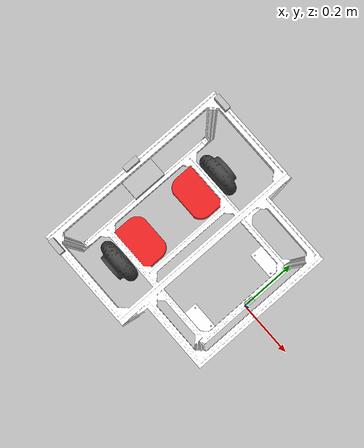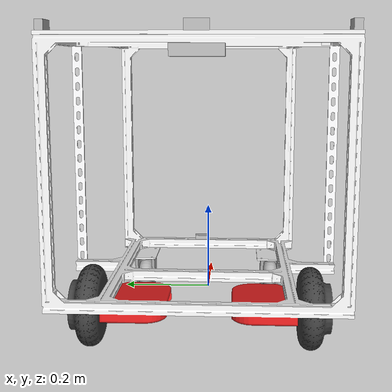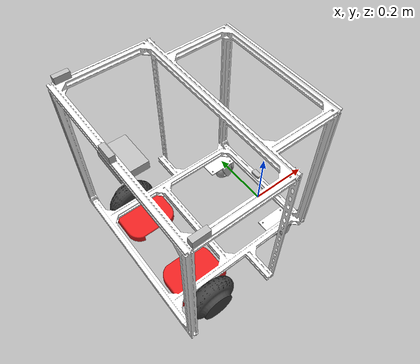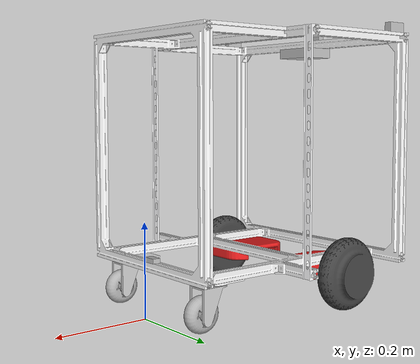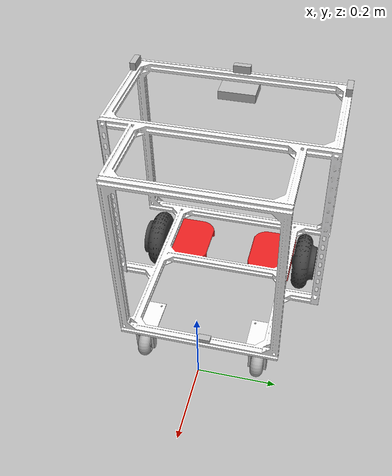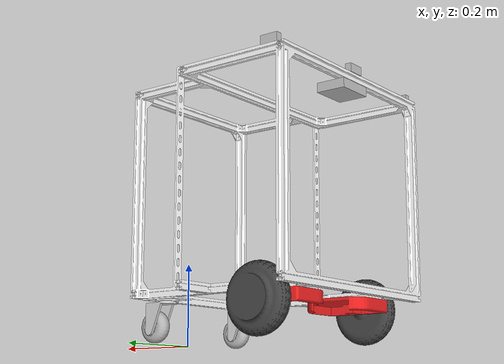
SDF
<?xml version='1.0'?>
<sdf version='1.4'>

    <!-- CASTER WHEEL COLLISION: SPHERE -->
    <!-- ALL CASTER JOINTS ARE FIXED -->

    <model name="diff_drive_robot">
        <static>false</static>

        <!-- HOVER BASE -->
        <link name='hover_base'>
            <pose>0 0 0.10 0 0 0</pose>

            <collision name='collision'>
                <pose>-0.2435 0 0.245 0 0 0</pose>
                <geometry>
                    <box>
                        <size>0.487 0.547 0.49</size>
                    </box>
                </geometry>
            </collision>

            <visual name='visual'>
                <geometry>
                    <mesh>
                        <uri>model://diff_drive_robot/meshes/hover_base.dae</uri>
                    </mesh>
                </geometry>
            </visual>

            <inertial>
                <pose>-0.2435 0 0.245 0 0 0</pose>
                <inertia>
                    <ixx>1.42769</ixx>
                    <iyy>1.42792</iyy>
                    <izz>1.42792</izz>
                </inertia>
                <mass>15</mass>
            </inertial>
        </link>

        <!-- HOVER LEFT WHEEL -->
        <link name='hover_left_wheel'>
            <pose>-0.3742 -0.208 0.078 0 1.5707 1.5707</pose>

            <collision name='collision'>
                <geometry>
                    <cylinder>
                        <radius>0.078</radius>
                        <length>0.045</length>
                    </cylinder>
                </geometry>
            </collision>

            <visual name='visual'>
                <pose>0 0 0 0 3.1415 0</pose>
                <geometry>
                    <mesh>
                        <uri>model://diff_drive_robot/meshes/hover_wheel.dae</uri>
                    </mesh>
                </geometry>
            </visual>

            <inertial>
                <inertia>
                    <ixx>0.003007</ixx>
                    <iyy>0.003007</iyy>
                    <izz>0.005440</izz>
                </inertia>
                <mass>1.7</mass>
            </inertial>
        </link>

        <!-- HOVER RIGHT WHEEL -->
        <link name='hover_right_wheel'>
            <pose>-0.3742 0.208 0.078 0 1.5707 1.5707</pose>

            <collision name='collision'>
                <geometry>
                    <cylinder>
                        <radius>0.078</radius>
                        <length>0.045</length>
                    </cylinder>
                </geometry>
            </collision>

            <visual name='visual'>
                <pose>0 0 0 0 0 0</pose>
                <geometry>
                    <mesh>
                        <uri>model://diff_drive_robot/meshes/hover_wheel.dae</uri>
                    </mesh>
                </geometry>
            </visual>

            <inertial>
                <inertia>
                    <ixx>0.003007</ixx>
                    <iyy>0.003007</iyy>
                    <izz>0.005440</izz>
                </inertia>
                <mass>1.7</mass>
            </inertial>
        </link>

        <!-- CASTER LEFT BASE -->
        <link name='caster_left_base'>
            <pose>-0.067 -0.1475 0.1 0 0 0</pose>

            <collision name='collision'>
                <pose>0 0 -0.003 0 0 0</pose>
                <geometry>
                    <box>
                        <size>0.094 0.065 0.006</size>
                    </box>
                </geometry>
            </collision>

            <visual name='visual'>
                <geometry>
                    <mesh>
                        <uri>model://diff_drive_robot/meshes/caster_base.dae</uri>
                    </mesh>
                </geometry>
            </visual>

            <inertial>
                <pose>-0.000272 -0.000090 -0.005057 0 0 0</pose>
                <inertia>
                    <ixx>65.864e-06</ixx>
                    <iyy>89.566e-06</iyy>
                    <izz>153.36e-06</izz>
                </inertia>
                <mass>0.1</mass>
            </inertial>
        </link>

        <!-- CASTER RIGHT BASE -->
        <link name='caster_right_base'>
            <pose>-0.067 0.1475 0.1 0 0 0</pose>

            <collision name='collision'>
                <pose>0 0 -0.003 0 0 0</pose>
                <geometry>
                    <box>
                        <size>0.094 0.065 0.006</size>
                    </box>
                </geometry>
            </collision>

            <visual name='visual'>
                <geometry>
                    <mesh>
                        <uri>model://diff_drive_robot/meshes/caster_base.dae</uri>
                    </mesh>
                </geometry>
            </visual>

            <inertial>
                <pose>-0.000272 -0.000090 -0.005057 0 0 0</pose>
                <inertia>
                    <ixx>65.864e-06</ixx>
                    <iyy>89.566e-06</iyy>
                    <izz>153.36e-06</izz>
                </inertia>
                <mass>0.1</mass>
            </inertial>
        </link>

        <!-- CASTER LEFT CONNECTOR -->
        <link name='caster_left_connector'>
            <pose>-0.067 -0.1475 0.094 0 0 0</pose>

            <collision name='collision'>
                <geometry>
                    <mesh>
                        <uri>model://diff_drive_robot/meshes/caster_connector.dae</uri>
                    </mesh>
                </geometry>
            </collision>

            <visual name='visual'>
                <geometry>
                    <mesh>
                        <uri>model://diff_drive_robot/meshes/caster_connector.dae</uri>
                    </mesh>
                </geometry>
            </visual>

            <inertial>
                <pose>0.0228297 0.000000 -0.0262890 0 0 0</pose>
                <inertia>
                    <ixx>0.03368e-02</ixx>
                    <ixz>0.00773e-02</ixz>
                    <iyy>0.03069e-02</iyy>
                    <izz>0.02370e-02</izz>
                </inertia>
                <mass>0.4</mass>
            </inertial>
        </link>

        <!-- CASTER RIGHT CONNECTOR -->
        <link name='caster_right_connector'>
            <pose>-0.067 0.1475 0.094 0 0 0</pose>

            <collision name='collision'>
                <geometry>
                    <mesh>
                        <uri>model://diff_drive_robot/meshes/caster_connector.dae</uri>
                    </mesh>
                </geometry>
            </collision>

            <visual name='visual'>
                <geometry>
                    <mesh>
                        <uri>model://diff_drive_robot/meshes/caster_connector.dae</uri>
                    </mesh>
                </geometry>
            </visual>

            <inertial>
                <pose>0.0228297 0.000000 -0.0262890 0 0 0</pose>
                <inertia>
                    <ixx>0.03368e-02</ixx>
                    <ixz>0.00773e-02</ixz>
                    <iyy>0.03069e-02</iyy>
                    <izz>0.02370e-02</izz>
                </inertia>
                <mass>0.4</mass>
            </inertial>
        </link>

        <!-- CASTER LEFT WHEEL -->
        <link name='caster_left_wheel'>
            <pose>-0.032 -0.1475 0.0375 0 0 0</pose>

            <collision name='collision'>
                <geometry>
                    <sphere>
                        <radius>0.0375</radius>
                    </sphere>
                </geometry>
                <surface>
                    <friction>
                        <ode>
                            <mu>0</mu>
                            <mu2>0</mu2>
                            <slip1>1</slip1>
                            <slip2>1</slip2>
                        </ode>
                    </friction>
                </surface>
            </collision>

            <visual name='visual'>
                <geometry>
                    <mesh>
                        <uri>model://diff_drive_robot/meshes/caster_wheel.dae</uri>
                    </mesh>
                </geometry>
            </visual>

            <inertial>
                <inertia>
                    <ixx>0.000218</ixx>
                    <iyy>0.000351</iyy>
                    <izz>0.000218</izz>
                </inertia>
                <mass>0.5</mass>
            </inertial>
        </link>

        <!-- CASTER RIGHT WHEEL -->
        <link name='caster_right_wheel'>
            <pose>-0.032 0.1475 0.0375 0 0 0</pose>

            <collision name='collision'>
                <geometry>
                    <sphere>
                        <radius>0.0375</radius>
                    </sphere>
                </geometry>
                <surface>
                    <friction>
                        <ode>
                            <mu>0</mu>
                            <mu2>0</mu2>
                            <slip1>1</slip1>
                            <slip2>1</slip2>
                        </ode>
                    </friction>
                </surface>
            </collision>

            <visual name='visual'>
                <geometry>
                    <mesh>
                        <uri>model://diff_drive_robot/meshes/caster_wheel.dae</uri>
                    </mesh>
                </geometry>
            </visual>

            <inertial>
                <inertia>
                    <ixx>0.000218</ixx>
                    <iyy>0.000351</iyy>
                    <izz>0.000218</izz>
                </inertia>
                <mass>0.5</mass>
            </inertial>
        </link>

        <!-- HOVER LEFT WHEEL JOINT -->
        <joint type='revolute' name='hover_left_wheel_joint'>
            <child>hover_left_wheel</child>
            <parent>hover_base</parent>
            <axis>
                <xyz>0 -1 0</xyz>
            </axis>
        </joint>

        <!-- HOVER RIGHT WHEEL JOINT -->
        <joint type='revolute' name='hover_right_wheel_joint'>
            <child>hover_right_wheel</child>
            <parent>hover_base</parent>
            <axis>
                <xyz>0 -1 0</xyz>
            </axis>
        </joint>

        <!-- CASTER LEFT BASE JOINT -->
        <joint type='fixed' name='caster_left_base_joint'>
            <child>caster_left_base</child>
            <parent>hover_base</parent>
        </joint>

        <!-- CASTER RIGHT BASE JOINT -->
        <joint type='fixed' name='caster_right_base_joint'>
            <child>caster_right_base</child>
            <parent>hover_base</parent>
        </joint>

        <!-- CASTER LEFT CONNECTOR JOINT -->
        <joint type='fixed' name='caster_left_connector_joint'>
            <child>caster_left_connector</child>
            <parent>caster_left_base</parent>
        </joint>

        <!-- CASTER RIGHT CONNECTOR JOINT -->
        <joint type='fixed' name='caster_right_connector_joint'>
            <child>caster_right_connector</child>
            <parent>caster_right_base</parent>
        </joint>

        <!-- CASTER LEFT WHEEL JOINT -->
        <joint type='fixed' name='caster_left_wheel_joint'>
            <child>caster_left_wheel</child>
            <parent>caster_left_connector</parent>
        </joint>

        <!-- CASTER RIGHT WHEEL JOINT -->
        <joint type='fixed' name='caster_right_wheel_joint'>
            <child>caster_right_wheel</child>
            <parent>caster_right_connector</parent>
        </joint>

        <!-- SONAR SENSORS -->
        <link name='sonar_front'>
            <pose>-0.4825 0 0.60 0 0 0</pose>

            <collision name='collision'>
                <geometry>
                    <box>
                        <size>0.015 0.043 0.02</size>
                    </box>
                </geometry>
            </collision>

            <visual name='visual'>
                <geometry>
                    <box>
                        <size>0.015 0.043 0.02</size>
                    </box>
                </geometry>
            </visual>

            <inertial>
                <inertia>
                    <ixx>0.000056</ixx>
                    <iyy>0.000016</iyy>
                    <izz>0.000052</izz>
                </inertia>
                <mass>0.075</mass>
            </inertial>

            <sensor name='sonar_front_sensor' type='sonar'>
                <pose>0 0 0 0 1.5707 0</pose>
                <sonar>
                    <min>0.02</min>
                    <max>5.00</max>
                    <radius>1.339</radius>
                </sonar>
                <always_on>true</always_on>
                <visualize>true</visualize>
                <update_rate>20</update_rate>

                <plugin filename='libgazebo_ros_sonar.so' name='sonar_front_ros'>
                    <gaussianNoise>0.005</gaussianNoise>
                    <bias>0</bias>
                    <topicName>/robot/sonar/front</topicName>
                </plugin>
            </sensor>
        </link>
        <joint type='fixed' name='sonar_front_joint'>
            <child>sonar_front</child>
            <parent>hover_base</parent>
        </joint>

        <link name='sonar_left'>
            <pose>-0.45 -0.266 0.60 0 0 1.5707</pose>

            <collision name='collision'>
                <geometry>
                    <box>
                        <size>0.015 0.043 0.02</size>
                    </box>
                </geometry>
            </collision>

            <visual name='visual'>
                <geometry>
                    <box>
                        <size>0.015 0.043 0.02</size>
                    </box>
                </geometry>
            </visual>

            <inertial>
                <inertia>
                    <ixx>0.000056</ixx>
                    <iyy>0.000016</iyy>
                    <izz>0.000052</izz>
                </inertia>
                <mass>0.075</mass>
            </inertial>

            <sensor name='sonar_left_sensor' type='sonar'>
                <pose>0 0 0 0 1.5707 0</pose>
                <sonar>
                    <min>0.02</min>
                    <max>5.00</max>
                    <radius>1.339</radius>
                </sonar>
                <always_on>true</always_on>
                <visualize>true</visualize>
                <update_rate>20</update_rate>

                <plugin filename='libgazebo_ros_sonar.so' name='sonar_left_ros'>
                    <gaussianNoise>0.005</gaussianNoise>
                    <bias>0</bias>
                    <topicName>/robot/sonar/left</topicName>
                </plugin>
            </sensor>
        </link>
        <joint type='fixed' name='sonar_left_joint'>
            <child>sonar_left</child>
            <parent>hover_base</parent>
        </joint>

        <link name='sonar_right'>
            <pose>-0.45 0.266 0.60 0 0 -1.5707</pose>

            <collision name='collision'>
                <geometry>
                    <box>
                        <size>0.015 0.043 0.02</size>
                    </box>
                </geometry>
            </collision>

            <visual name='visual'>
                <geometry>
                    <box>
                        <size>0.015 0.043 0.02</size>
                    </box>
                </geometry>
            </visual>

            <inertial>
                <inertia>
                    <ixx>0.000056</ixx>
                    <iyy>0.000016</iyy>
                    <izz>0.000052</izz>
                </inertia>
                <mass>0.075</mass>
            </inertial>

            <sensor name='sonar_right_sensor' type='sonar'>
                <pose>0 0 0 0 1.5707 0</pose>
                <sonar>
                    <min>0.02</min>
                    <max>5.00</max>
                    <radius>1.339</radius>
                </sonar>
                <always_on>true</always_on>
                <visualize>true</visualize>
                <update_rate>20</update_rate>

                <plugin filename='libgazebo_ros_sonar.so' name='sonar_right_ros'>
                    <gaussianNoise>0.005</gaussianNoise>
                    <bias>0</bias>
                    <topicName>/robot/sonar/right</topicName>
                </plugin>
            </sensor>
        </link>
        <joint type='fixed' name='sonar_rightt_joint'>
            <child>sonar_right</child>
            <parent>hover_base</parent>
        </joint>

        <!-- CAMERA SENSOR -->
        <link name='camera'>
            <pose>-0.4515 0 0.559 0 0 0</pose>

            <collision name='collision'>
                <geometry>
                    <box>
                        <size>0.071 0.094 0.022</size>
                    </box>
                </geometry>
            </collision>

            <visual name='visual'>
                <geometry>
                    <box>
                        <size>0.071 0.094 0.022</size>
                    </box>
                </geometry>
            </visual>

            <inertial>
                <inertia>
                    <ixx>0.000466</ixx>
                    <iyy>0.000276</iyy>
                    <izz>0.000693</izz>
                </inertia>
                <mass>0.5</mass>
            </inertial>

            <sensor name='camera_sensor' type='camera'>
                <pose>0 0 0 0 0 3.1415</pose>
                <camera name='head'>
                    <image>
                        <width>1280</width>
                        <height>720</height>
                        <format>R8G8B8</format>
                    </image>
                </camera>
                <visualize>true</visualize>
                <update_rate>30</update_rate>

                <plugin filename='libgazebo_ros_camera.so' name='camera_ros'>
                    <alwaysOn>true</alwaysOn>
                    <updateRate>30</updateRate>

                    <cameraName>/robot/camera</cameraName>
                    <imageTopicName>image_raw</imageTopicName>
                    <cameraInfoTopicName>camera_info</cameraInfoTopicName>
                    <frameName>camera_link</frameName>

                    <hackBaseline>0.07</hackBaseline>
                    <distortionK1>0.0</distortionK1>
                    <distortionK2>0.0</distortionK2>
                    <distortionK3>0.0</distortionK3>
                    <distortionT1>0.0</distortionT1>
                    <distortionT2>0.0</distortionT2>
                </plugin>
            </sensor>
        </link>
        <joint type='fixed' name='camera_joint'>
            <child>camera</child>
            <parent>hover_base</parent>
        </joint>

        <!-- IMU SENSOR -->
        <link name='imu'>
            <pose>-0.00842 0.015 0.125 0 0 0</pose>

            <collision name='collision'>
                <geometry>
                    <box>
                        <size>0.01684 0.03111 0.01</size>
                    </box>
                </geometry>
            </collision>

            <visual name='visual'>
                <geometry>
                    <box>
                        <size>0.01684 0.03111 0.01</size>
                    </box>
                </geometry>
            </visual>

            <inertial>
                <inertia>
                    <ixx>0.000056</ixx>
                    <iyy>0.000016</iyy>
                    <izz>0.000052</izz>
                </inertia>
                <mass>0.075</mass>
            </inertial>

            <sensor name='imu_sensor' type='imu'>
                <imu>
                    <angular_velocity>
                        <x>
                            <noise type="gaussian">
                                <mean>0</mean>
                                <stddev>0.0002</stddev>
                                <bias_mean>7.5e-06</bias_mean>
                                <bias_stddev>8e-07</bias_stddev>
                            </noise>
                        </x>
                        <y>
                            <noise type="gaussian">
                                <mean>0</mean>
                                <stddev>0.0002</stddev>
                                <bias_mean>7.5e-06</bias_mean>
                                <bias_stddev>8e-07</bias_stddev>
                            </noise>
                        </y>
                        <z>
                            <noise type="gaussian">
                                <mean>0</mean>
                                <stddev>0.0002</stddev>
                                <bias_mean>7.5e-06</bias_mean>
                                <bias_stddev>8e-07</bias_stddev>
                            </noise>
                        </z>
                    </angular_velocity>

                    <linear_acceleration>
                        <x>
                            <noise type="gaussian">
                                <mean>0</mean>
                                <stddev>0.017</stddev>
                                <bias_mean>0.1</bias_mean>
                                <bias_stddev>0.001</bias_stddev>
                            </noise>
                        </x>
                        <y>
                            <noise type="gaussian">
                                <mean>0</mean>
                                <stddev>0.017</stddev>
                                <bias_mean>0.1</bias_mean>
                                <bias_stddev>0.001</bias_stddev>
                            </noise>
                        </y>
                        <z>
                            <noise type="gaussian">
                                <mean>0</mean>
                                <stddev>0.017</stddev>
                                <bias_mean>0.1</bias_mean>
                                <bias_stddev>0.001</bias_stddev>
                            </noise>
                        </z>
                    </linear_acceleration>
                </imu>
                <always_on>true</always_on>
                <update_rate>100</update_rate>

                <plugin filename='libgazebo_ros_imu_sensor.so' name='imu_ros'>
                    <robotNamespace>robot</robotNamespace>
                    <topicName>imu</topicName>
                    <frameName>hover_base</frameName>
                    <updateRateHZ>10</updateRateHZ>
                    <gaussianNoise>0</gaussianNoise>
                </plugin>
            </sensor>
        </link>
        <joint type='fixed' name='imu_joint'>
            <child>imu</child>
            <parent>hover_base</parent>
        </joint>
    </model>
</sdf>
